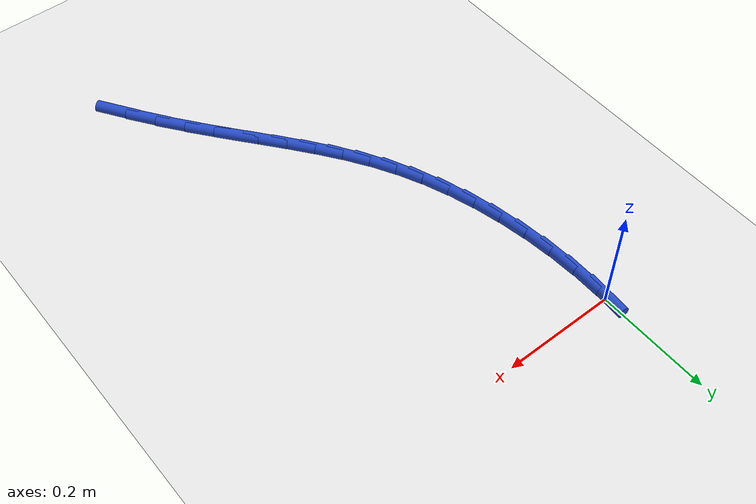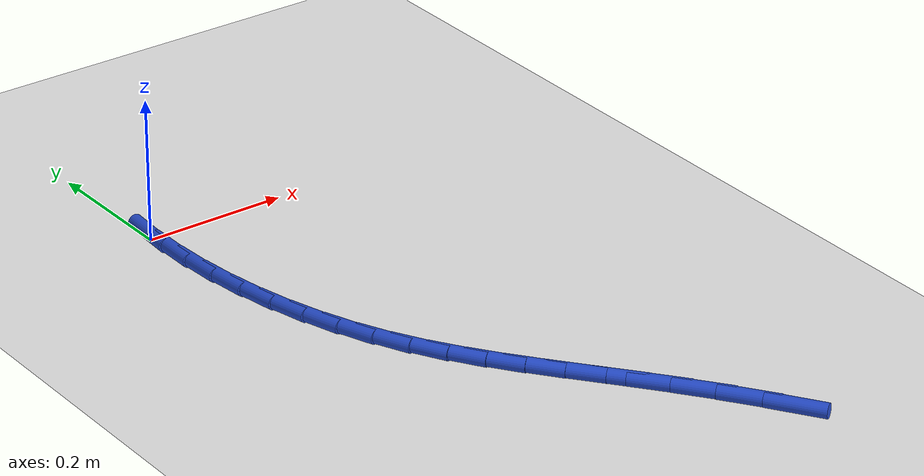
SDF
<sdf version="1.6">
 <world name="default">
  <model name="ground_plane">
   <static>1</static>
   <link name="link">
    <collision name="collision">
     <geometry><plane><normal>0 0 1</normal><size>100 100</size></plane></geometry>
     <surface><friction><ode><mu>100</mu><mu2>50</mu2></ode></friction></surface>
    </collision>
    <visual name="visual">
     <cast_shadows>0</cast_shadows>
     <geometry><plane><normal>0 0 1</normal><size>100 100</size></plane></geometry>
     <material>
      <script><uri>file://media/materials/scripts/gazebo.material</uri><name>Gazebo/WhiteGlow</name></script>
     </material>
    </visual>
   </link>
  </model>
  <model name="line">
   <link name="link_132">
    <pose>0.38387483445530207 -0.8215883261704742 0.01 0 1.57 -0.9851283186025045</pose>
    <collision name="collision">
     <geometry><cylinder><radius>0.01</radius><length>0.08</length></cylinder></geometry>
    </collision>
    <visual name="visual">
     <material>
      <script><name>Gazebo/Blue</name><uri>file://media/materials/scripts/gazebo.material</uri></script>
     </material>
     <geometry><cylinder><radius>0.01</radius><length>0.08</length></cylinder></geometry>
    </visual>
   </link>
   <link name="link_133">
    <pose>0.35173942976521255 -0.7731405365473455 0.01 0 1.57 -0.9568128150489336</pose>
    <collision name="collision">
     <geometry><cylinder><radius>0.01</radius><length>0.08</length></cylinder></geometry>
    </collision>
    <visual name="visual">
     <material>
      <script><name>Gazebo/Blue</name><uri>file://media/materials/scripts/gazebo.material</uri></script>
     </material>
     <geometry><cylinder><radius>0.01</radius><length>0.08</length></cylinder></geometry>
    </visual>
   </link>
   <link name="link_134">
    <pose>0.31923660659133146 -0.7270284018645867 0.01 0 1.57 -0.9247369917217855</pose>
    <collision name="collision">
     <geometry><cylinder><radius>0.01</radius><length>0.08</length></cylinder></geometry>
    </collision>
    <visual name="visual">
     <material>
      <script><name>Gazebo/Blue</name><uri>file://media/materials/scripts/gazebo.material</uri></script>
     </material>
     <geometry><cylinder><radius>0.01</radius><length>0.08</length></cylinder></geometry>
    </visual>
   </link>
   <link name="link_135">
    <pose>0.286433037947484 -0.6835226266210365 0.01 0 1.57 -0.9030521549331368</pose>
    <collision name="collision">
     <geometry><cylinder><radius>0.01</radius><length>0.08</length></cylinder></geometry>
    </collision>
    <visual name="visual">
     <material>
      <script><name>Gazebo/Blue</name><uri>file://media/materials/scripts/gazebo.material</uri></script>
     </material>
     <geometry><cylinder><radius>0.01</radius><length>0.08</length></cylinder></geometry>
    </visual>
   </link>
   <link name="link_136">
    <pose>0.25371757497693054 -0.6420365499804969 0.01 0 1.57 -0.894288738235678</pose>
    <collision name="collision">
     <geometry><cylinder><radius>0.01</radius><length>0.08</length></cylinder></geometry>
    </collision>
    <visual name="visual">
     <material>
      <script><name>Gazebo/Blue</name><uri>file://media/materials/scripts/gazebo.material</uri></script>
     </material>
     <geometry><cylinder><radius>0.01</radius><length>0.08</length></cylinder></geometry>
    </visual>
   </link>
   <link name="link_137">
    <pose>0.22150453076063517 -0.6019157529917623 0.01 0 1.57 -0.8996495891364626</pose>
    <collision name="collision">
     <geometry><cylinder><radius>0.01</radius><length>0.08</length></cylinder></geometry>
    </collision>
    <visual name="visual">
     <material>
      <script><name>Gazebo/Blue</name><uri>file://media/materials/scripts/gazebo.material</uri></script>
     </material>
     <geometry><cylinder><radius>0.01</radius><length>0.08</length></cylinder></geometry>
    </visual>
   </link>
   <link name="link_138">
    <pose>0.19020821837956206 -0.5625058167036272 0.01 0 1.57 -0.920014655037656</pose>
    <collision name="collision">
     <geometry><cylinder><radius>0.01</radius><length>0.08</length></cylinder></geometry>
    </collision>
    <visual name="visual">
     <material>
      <script><name>Gazebo/Blue</name><uri>file://media/materials/scripts/gazebo.material</uri></script>
     </material>
     <geometry><cylinder><radius>0.01</radius><length>0.08</length></cylinder></geometry>
    </visual>
   </link>
   <link name="link_139">
    <pose>0.16024295091467333 -0.5231523221648832 0.01 0 1.57 -0.9558181895094806</pose>
    <collision name="collision">
     <geometry><cylinder><radius>0.01</radius><length>0.08</length></cylinder></geometry>
    </collision>
    <visual name="visual">
     <material>
      <script><name>Gazebo/Blue</name><uri>file://media/materials/scripts/gazebo.material</uri></script>
     </material>
     <geometry><cylinder><radius>0.01</radius><length>0.08</length></cylinder></geometry>
    </visual>
   </link>
   <link name="link_140">
    <pose>0.13202304144693347 -0.4832008504243251 0.01 0 1.57 -1.006842864763621</pose>
    <collision name="collision">
     <geometry><cylinder><radius>0.01</radius><length>0.08</length></cylinder></geometry>
    </collision>
    <visual name="visual">
     <material>
      <script><name>Gazebo/Blue</name><uri>file://media/materials/scripts/gazebo.material</uri></script>
     </material>
     <geometry><cylinder><radius>0.01</radius><length>0.08</length></cylinder></geometry>
    </visual>
   </link>
   <link name="link_141">
    <pose>0.10596280305730507 -0.44199698253074543 0.01 0 1.57 -1.0719459476015227</pose>
    <collision name="collision">
     <geometry><cylinder><radius>0.01</radius><length>0.08</length></cylinder></geometry>
    </collision>
    <visual name="visual">
     <material>
      <script><name>Gazebo/Blue</name><uri>file://media/materials/scripts/gazebo.material</uri></script>
     </material>
     <geometry><cylinder><radius>0.01</radius><length>0.08</length></cylinder></geometry>
    </visual>
   </link>
   <link name="link_142">
    <pose>0.08247616648138809 -0.39888726321542006 0.01 0 1.57 -1.1446374311916854</pose>
    <collision name="collision">
     <geometry><cylinder><radius>0.01</radius><length>0.08</length></cylinder></geometry>
    </collision>
    <visual name="visual">
     <material>
      <script><name>Gazebo/Blue</name><uri>file://media/materials/scripts/gazebo.material</uri></script>
     </material>
     <geometry><cylinder><radius>0.01</radius><length>0.08</length></cylinder></geometry>
    </visual>
   </link>
   <link name="link_143">
    <pose>0.06186805959061983 -0.35349297350990333 0.01 0 1.57 -1.213763336383752</pose>
    <collision name="collision">
     <geometry><cylinder><radius>0.01</radius><length>0.08</length></cylinder></geometry>
    </collision>
    <visual name="visual">
     <material>
      <script><name>Gazebo/Blue</name><uri>file://media/materials/scripts/gazebo.material</uri></script>
     </material>
     <geometry><cylinder><radius>0.01</radius><length>0.08</length></cylinder></geometry>
    </visual>
   </link>
   <link name="link_144">
    <pose>0.04418479839341294 -0.30608721279016304 0.01 0 1.57 -1.2786899438000445</pose>
    <collision name="collision">
     <geometry><cylinder><radius>0.01</radius><length>0.08</length></cylinder></geometry>
    </collision>
    <visual name="visual">
     <material>
      <script><name>Gazebo/Blue</name><uri>file://media/materials/scripts/gazebo.material</uri></script>
     </material>
     <geometry><cylinder><radius>0.01</radius><length>0.08</length></cylinder></geometry>
    </visual>
   </link>
   <link name="link_145">
    <pose>0.02943518662592928 -0.2570376282495394 0.01 0 1.57 -1.3403496227027523</pose>
    <collision name="collision">
     <geometry><cylinder><radius>0.01</radius><length>0.08</length></cylinder></geometry>
    </collision>
    <visual name="visual">
     <material>
      <script><name>Gazebo/Blue</name><uri>file://media/materials/scripts/gazebo.material</uri></script>
     </material>
     <geometry><cylinder><radius>0.01</radius><length>0.08</length></cylinder></geometry>
    </visual>
   </link>
   <link name="link_146">
    <pose>0.017628028024329667 -0.20671186708136915 0.01 0 1.57 -1.3996364977760698</pose>
    <collision name="collision">
     <geometry><cylinder><radius>0.01</radius><length>0.08</length></cylinder></geometry>
    </collision>
    <visual name="visual">
     <material>
      <script><name>Gazebo/Blue</name><uri>file://media/materials/scripts/gazebo.material</uri></script>
     </material>
     <geometry><cylinder><radius>0.01</radius><length>0.08</length></cylinder></geometry>
    </visual>
   </link>
   <link name="link_147">
    <pose>0.008772126324775663 -0.1554775764789915 0.01 0 1.57 -1.457410839412179</pose>
    <collision name="collision">
     <geometry><cylinder><radius>0.01</radius><length>0.08</length></cylinder></geometry>
    </collision>
    <visual name="visual">
     <material>
      <script><name>Gazebo/Blue</name><uri>file://media/materials/scripts/gazebo.material</uri></script>
     </material>
     <geometry><cylinder><radius>0.01</radius><length>0.08</length></cylinder></geometry>
    </visual>
   </link>
   <link name="link_148">
    <pose>0.002876285263428607 -0.10370240363574566 0.01 0 1.57 -1.514511922141512</pose>
    <collision name="collision">
     <geometry><cylinder><radius>0.01</radius><length>0.08</length></cylinder></geometry>
    </collision>
    <visual name="visual">
     <material>
      <script><name>Gazebo/Blue</name><uri>file://media/materials/scripts/gazebo.material</uri></script>
     </material>
     <geometry><cylinder><radius>0.01</radius><length>0.08</length></cylinder></geometry>
    </visual>
   </link>
   <link name="link_149">
    <pose>-5.069142355039469e-05 -0.05175399574496848 0.01 0 1.57 1.5698168583188814</pose>
    <collision name="collision">
     <geometry><cylinder><radius>0.01</radius><length>0.08</length></cylinder></geometry>
    </collision>
    <visual name="visual">
     <material>
      <script><name>Gazebo/Blue</name><uri>file://media/materials/scripts/gazebo.material</uri></script>
     </material>
     <geometry><cylinder><radius>0.01</radius><length>0.08</length></cylinder></geometry>
    </visual>
   </link>
   <link name="link_150">
    <pose>4.683753385137379e-17 -6.938893903907228e-17 0.01 0 1.57 1.511536852287462</pose>
    <collision name="collision">
     <geometry><cylinder><radius>0.01</radius><length>0.08</length></cylinder></geometry>
    </collision>
    <visual name="visual">
     <material>
      <script><name>Gazebo/Blue</name><uri>file://media/materials/scripts/gazebo.material</uri></script>
     </material>
     <geometry><cylinder><radius>0.01</radius><length>0.08</length></cylinder></geometry>
    </visual>
   </link>
  </model>
 </world>
</sdf>
